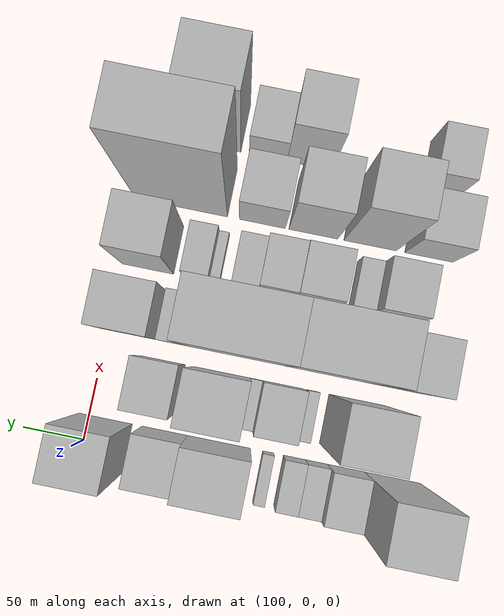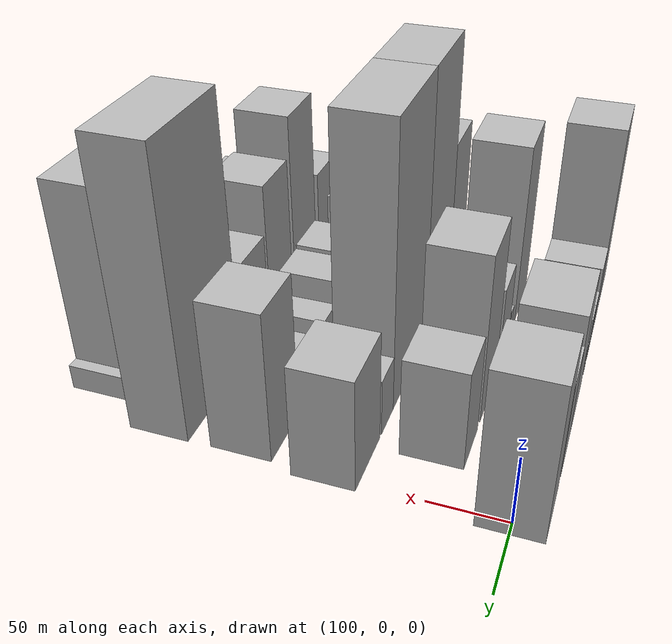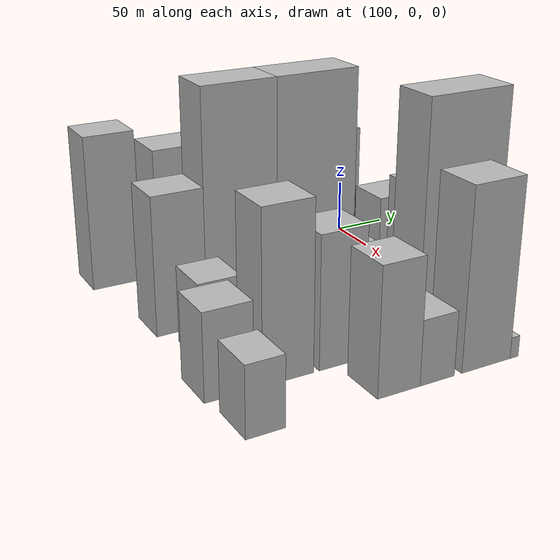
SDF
<sdf version="1.6">
 <world name="default">
  <model name="building_17">
   <static>1</static>
   <pose>100.0000 -247.5709 0 0.000000 0.000000 0.000000</pose>
   <link name="link">
    <pose>0 0 70.50 0 0 0</pose>
    <collision name="collision"><geometry><box><size>40.0000 45.3294 141.0000</size></box></geometry></collision>
    <visual name="visual">
     <cast_shadows>0</cast_shadows>
     <geometry><box><size>40.0000 45.3294 141.0000</size></box></geometry>
     <material>
      <script>
       <uri>model://HANNAS_wall/materials/scripts</uri>
       <uri>model://HANNAS_wall/materials/textures</uri>
       <name>vrc/HANNAS_wall</name>
      </script>
     </material>
    </visual>
   </link>
  </model>
  <model name="building_18">
   <static>1</static>
   <pose>100.0000 -209.9071 0 0.000000 0.000000 0.000000</pose>
   <link name="link">
    <pose>0 0 25.50 0 0 0</pose>
    <collision name="collision"><geometry><box><size>40.0000 29.9982 51.0000</size></box></geometry></collision>
    <visual name="visual">
     <cast_shadows>0</cast_shadows>
     <geometry><box><size>40.0000 29.9982 51.0000</size></box></geometry>
     <material>
      <script>
       <uri>model://HANNAS_wall/materials/scripts</uri>
       <uri>model://HANNAS_wall/materials/textures</uri>
       <name>vrc/HANNAS_wall</name>
      </script>
     </material>
    </visual>
   </link>
  </model>
  <model name="building_19">
   <static>1</static>
   <pose>100.0000 -185.9173 0 0.000000 0.000000 0.000000</pose>
   <link name="link">
    <pose>0 0 16.50 0 0 0</pose>
    <collision name="collision"><geometry><box><size>40.0000 17.9815 33.0000</size></box></geometry></collision>
    <visual name="visual">
     <cast_shadows>0</cast_shadows>
     <geometry><box><size>40.0000 17.9815 33.0000</size></box></geometry>
     <material>
      <script>
       <uri>model://HANNAS_wall/materials/scripts</uri>
       <uri>model://HANNAS_wall/materials/textures</uri>
       <name>vrc/HANNAS_wall</name>
      </script>
     </material>
    </visual>
   </link>
  </model>
  <model name="building_20">
   <static>1</static>
   <pose>100.0000 -167.9910 0 0.000000 0.000000 0.000000</pose>
   <link name="link">
    <pose>0 0 16.50 0 0 0</pose>
    <collision name="collision"><geometry><box><size>40.0000 17.8710 33.0000</size></box></geometry></collision>
    <visual name="visual">
     <cast_shadows>0</cast_shadows>
     <geometry><box><size>40.0000 17.8710 33.0000</size></box></geometry>
     <material>
      <script>
       <uri>model://HANNAS_wall/materials/scripts</uri>
       <uri>model://HANNAS_wall/materials/textures</uri>
       <name>vrc/HANNAS_wall</name>
      </script>
     </material>
    </visual>
   </link>
  </model>
  <model name="building_21">
   <static>1</static>
   <pose>100.0000 -146.5413 0 0.000000 0.000000 0.000000</pose>
   <link name="link">
    <pose>0 0 10.50 0 0 0</pose>
    <collision name="collision"><geometry><box><size>40.0000 9.0284 21.0000</size></box></geometry></collision>
    <visual name="visual">
     <cast_shadows>0</cast_shadows>
     <geometry><box><size>40.0000 9.0284 21.0000</size></box></geometry>
     <material>
      <script>
       <uri>model://HANNAS_wall/materials/scripts</uri>
       <uri>model://HANNAS_wall/materials/textures</uri>
       <name>vrc/HANNAS_wall</name>
      </script>
     </material>
    </visual>
   </link>
  </model>
  <model name="building_22">
   <static>1</static>
   <pose>100.0000 -106.4332 0 0.000000 0.000000 0.000000</pose>
   <link name="link">
    <pose>0 0 45.00 0 0 0</pose>
    <collision name="collision"><geometry><box><size>40.0000 51.1879 90.0000</size></box></geometry></collision>
    <visual name="visual">
     <cast_shadows>0</cast_shadows>
     <geometry><box><size>40.0000 51.1879 90.0000</size></box></geometry>
     <material>
      <script>
       <uri>model://HANNAS_wall/materials/scripts</uri>
       <uri>model://HANNAS_wall/materials/textures</uri>
       <name>vrc/HANNAS_wall</name>
      </script>
     </material>
    </visual>
   </link>
  </model>
  <model name="building_23">
   <static>1</static>
   <pose>100.0000 -62.1196 0 0.000000 0.000000 0.000000</pose>
   <link name="link">
    <pose>0 0 34.50 0 0 0</pose>
    <collision name="collision"><geometry><box><size>40.0000 37.4392 69.0000</size></box></geometry></collision>
    <visual name="visual">
     <cast_shadows>0</cast_shadows>
     <geometry><box><size>40.0000 37.4392 69.0000</size></box></geometry>
     <material>
      <script>
       <uri>model://HANNAS_wall/materials/scripts</uri>
       <uri>model://HANNAS_wall/materials/textures</uri>
       <name>vrc/HANNAS_wall</name>
      </script>
     </material>
    </visual>
   </link>
  </model>
  <model name="building_24">
   <static>1</static>
   <pose>100.0000 -13.4017 0 0.000000 0.000000 0.000000</pose>
   <link name="link">
    <pose>0 0 55.50 0 0 0</pose>
    <collision name="collision"><geometry><box><size>40.0000 43.9966 111.0000</size></box></geometry></collision>
    <visual name="visual">
     <cast_shadows>0</cast_shadows>
     <geometry><box><size>40.0000 43.9966 111.0000</size></box></geometry>
     <material>
      <script>
       <uri>model://HANNAS_wall/materials/scripts</uri>
       <uri>model://HANNAS_wall/materials/textures</uri>
       <name>vrc/HANNAS_wall</name>
      </script>
     </material>
    </visual>
   </link>
  </model>
  <model name="building_73">
   <static>1</static>
   <pose>155.0000 -207.7042 0 0.000000 0.000000 0.000000</pose>
   <link name="link">
    <pose>0 0 69.00 0 0 0</pose>
    <collision name="collision"><geometry><box><size>40.0000 44.4602 138.0000</size></box></geometry></collision>
    <visual name="visual">
     <cast_shadows>0</cast_shadows>
     <geometry><box><size>40.0000 44.4602 138.0000</size></box></geometry>
     <material>
      <script>
       <uri>model://HANNAS_wall/materials/scripts</uri>
       <uri>model://HANNAS_wall/materials/textures</uri>
       <name>vrc/HANNAS_wall</name>
      </script>
     </material>
    </visual>
   </link>
  </model>
  <model name="building_74">
   <static>1</static>
   <pose>155.0000 -171.7749 0 0.000000 0.000000 0.000000</pose>
   <link name="link">
    <pose>0 0 10.50 0 0 0</pose>
    <collision name="collision"><geometry><box><size>40.0000 9.3984 21.0000</size></box></geometry></collision>
    <visual name="visual">
     <cast_shadows>0</cast_shadows>
     <geometry><box><size>40.0000 9.3984 21.0000</size></box></geometry>
     <material>
      <script>
       <uri>model://HANNAS_wall/materials/scripts</uri>
       <uri>model://HANNAS_wall/materials/textures</uri>
       <name>vrc/HANNAS_wall</name>
      </script>
     </material>
    </visual>
   </link>
  </model>
  <model name="building_75">
   <static>1</static>
   <pose>155.0000 -147.3558 0 0.000000 0.000000 0.000000</pose>
   <link name="link">
    <pose>0 0 31.50 0 0 0</pose>
    <collision name="collision"><geometry><box><size>40.0000 33.4397 63.0000</size></box></geometry></collision>
    <visual name="visual">
     <cast_shadows>0</cast_shadows>
     <geometry><box><size>40.0000 33.4397 63.0000</size></box></geometry>
     <material>
      <script>
       <uri>model://HANNAS_wall/materials/scripts</uri>
       <uri>model://HANNAS_wall/materials/textures</uri>
       <name>vrc/HANNAS_wall</name>
      </script>
     </material>
    </visual>
   </link>
  </model>
  <model name="building_76">
   <static>1</static>
   <pose>155.0000 -125.5573 0 0.000000 0.000000 0.000000</pose>
   <link name="link">
    <pose>0 0 10.50 0 0 0</pose>
    <collision name="collision"><geometry><box><size>40.0000 10.1575 21.0000</size></box></geometry></collision>
    <visual name="visual">
     <cast_shadows>0</cast_shadows>
     <geometry><box><size>40.0000 10.1575 21.0000</size></box></geometry>
     <material>
      <script>
       <uri>model://HANNAS_wall/materials/scripts</uri>
       <uri>model://HANNAS_wall/materials/textures</uri>
       <name>vrc/HANNAS_wall</name>
      </script>
     </material>
    </visual>
   </link>
  </model>
  <model name="building_77">
   <static>1</static>
   <pose>155.0000 -97.4582 0 0.000000 0.000000 0.000000</pose>
   <link name="link">
    <pose>0 0 61.50 0 0 0</pose>
    <collision name="collision"><geometry><box><size>40.0000 46.0406 123.0000</size></box></geometry></collision>
    <visual name="visual">
     <cast_shadows>0</cast_shadows>
     <geometry><box><size>40.0000 46.0406 123.0000</size></box></geometry>
     <material>
      <script>
       <uri>model://HANNAS_wall/materials/scripts</uri>
       <uri>model://HANNAS_wall/materials/textures</uri>
       <name>vrc/HANNAS_wall</name>
      </script>
     </material>
    </visual>
   </link>
  </model>
  <model name="building_78">
   <static>1</static>
   <pose>155.0000 -49.2746 0 0.000000 0.000000 0.000000</pose>
   <link name="link">
    <pose>0 0 36.00 0 0 0</pose>
    <collision name="collision"><geometry><box><size>40.0000 36.3266 72.0000</size></box></geometry></collision>
    <visual name="visual">
     <cast_shadows>0</cast_shadows>
     <geometry><box><size>40.0000 36.3266 72.0000</size></box></geometry>
     <material>
      <script>
       <uri>model://HANNAS_wall/materials/scripts</uri>
       <uri>model://HANNAS_wall/materials/textures</uri>
       <name>vrc/HANNAS_wall</name>
      </script>
     </material>
    </visual>
   </link>
  </model>
  <model name="building_120">
   <static>1</static>
   <pose>210.0000 -232.6788 0 0.000000 0.000000 0.000000</pose>
   <link name="link">
    <pose>0 0 60.00 0 0 0</pose>
    <collision name="collision"><geometry><box><size>40.0000 44.4890 120.0000</size></box></geometry></collision>
    <visual name="visual">
     <cast_shadows>0</cast_shadows>
     <geometry><box><size>40.0000 44.4890 120.0000</size></box></geometry>
     <material>
      <script>
       <uri>model://HANNAS_wall/materials/scripts</uri>
       <uri>model://HANNAS_wall/materials/textures</uri>
       <name>vrc/HANNAS_wall</name>
      </script>
     </material>
    </visual>
   </link>
  </model>
  <model name="building_121">
   <static>1</static>
   <pose>210.0000 -177.3393 0 0.000000 0.000000 0.000000</pose>
   <link name="link">
    <pose>0 0 100.50 0 0 0</pose>
    <collision name="collision"><geometry><box><size>40.0000 66.1899 201.0000</size></box></geometry></collision>
    <visual name="visual">
     <cast_shadows>0</cast_shadows>
     <geometry><box><size>40.0000 66.1899 201.0000</size></box></geometry>
     <material>
      <script>
       <uri>model://HANNAS_wall/materials/scripts</uri>
       <uri>model://HANNAS_wall/materials/textures</uri>
       <name>vrc/HANNAS_wall</name>
      </script>
     </material>
    </visual>
   </link>
  </model>
  <model name="building_122">
   <static>1</static>
   <pose>210.0000 -106.1321 0 0.000000 0.000000 0.000000</pose>
   <link name="link">
    <pose>0 0 100.50 0 0 0</pose>
    <collision name="collision"><geometry><box><size>40.0000 76.2245 201.0000</size></box></geometry></collision>
    <visual name="visual">
     <cast_shadows>0</cast_shadows>
     <geometry><box><size>40.0000 76.2245 201.0000</size></box></geometry>
     <material>
      <script>
       <uri>model://HANNAS_wall/materials/scripts</uri>
       <uri>model://HANNAS_wall/materials/textures</uri>
       <name>vrc/HANNAS_wall</name>
      </script>
     </material>
    </visual>
   </link>
  </model>
  <model name="building_123">
   <static>1</static>
   <pose>210.0000 -55.7911 0 0.000000 0.000000 0.000000</pose>
   <link name="link">
    <pose>0 0 21.00 0 0 0</pose>
    <collision name="collision"><geometry><box><size>40.0000 24.4575 42.0000</size></box></geometry></collision>
    <visual name="visual">
     <cast_shadows>0</cast_shadows>
     <geometry><box><size>40.0000 24.4575 42.0000</size></box></geometry>
     <material>
      <script>
       <uri>model://HANNAS_wall/materials/scripts</uri>
       <uri>model://HANNAS_wall/materials/textures</uri>
       <name>vrc/HANNAS_wall</name>
      </script>
     </material>
    </visual>
   </link>
  </model>
  <model name="building_124">
   <static>1</static>
   <pose>210.0000 -17.4130 0 0.000000 0.000000 0.000000</pose>
   <link name="link">
    <pose>0 0 40.50 0 0 0</pose>
    <collision name="collision"><geometry><box><size>40.0000 46.2987 81.0000</size></box></geometry></collision>
    <visual name="visual">
     <cast_shadows>0</cast_shadows>
     <geometry><box><size>40.0000 46.2987 81.0000</size></box></geometry>
     <material>
      <script>
       <uri>model://HANNAS_wall/materials/scripts</uri>
       <uri>model://HANNAS_wall/materials/textures</uri>
       <name>vrc/HANNAS_wall</name>
      </script>
     </material>
    </visual>
   </link>
  </model>
  <model name="building_167">
   <static>1</static>
   <pose>265.0000 -224.0963 0 0.000000 0.000000 0.000000</pose>
   <link name="link">
    <pose>0 0 33.00 0 0 0</pose>
    <collision name="collision"><geometry><box><size>40.0000 36.3604 66.0000</size></box></geometry></collision>
    <visual name="visual">
     <cast_shadows>0</cast_shadows>
     <geometry><box><size>40.0000 36.3604 66.0000</size></box></geometry>
     <material>
      <script>
       <uri>model://HANNAS_wall/materials/scripts</uri>
       <uri>model://HANNAS_wall/materials/textures</uri>
       <name>vrc/HANNAS_wall</name>
      </script>
     </material>
    </visual>
   </link>
  </model>
  <model name="building_168">
   <static>1</static>
   <pose>265.0000 -196.7572 0 0.000000 0.000000 0.000000</pose>
   <link name="link">
    <pose>0 0 16.50 0 0 0</pose>
    <collision name="collision"><geometry><box><size>40.0000 18.3178 33.0000</size></box></geometry></collision>
    <visual name="visual">
     <cast_shadows>0</cast_shadows>
     <geometry><box><size>40.0000 18.3178 33.0000</size></box></geometry>
     <material>
      <script>
       <uri>model://HANNAS_wall/materials/scripts</uri>
       <uri>model://HANNAS_wall/materials/textures</uri>
       <name>vrc/HANNAS_wall</name>
      </script>
     </material>
    </visual>
   </link>
  </model>
  <model name="building_169">
   <static>1</static>
   <pose>265.0000 -161.6780 0 0.000000 0.000000 0.000000</pose>
   <link name="link">
    <pose>0 0 30.00 0 0 0</pose>
    <collision name="collision"><geometry><box><size>40.0000 35.8407 60.0000</size></box></geometry></collision>
    <visual name="visual">
     <cast_shadows>0</cast_shadows>
     <geometry><box><size>40.0000 35.8407 60.0000</size></box></geometry>
     <material>
      <script>
       <uri>model://HANNAS_wall/materials/scripts</uri>
       <uri>model://HANNAS_wall/materials/textures</uri>
       <name>vrc/HANNAS_wall</name>
      </script>
     </material>
    </visual>
   </link>
  </model>
  <model name="building_170">
   <static>1</static>
   <pose>265.0000 -128.5585 0 0.000000 0.000000 0.000000</pose>
   <link name="link">
    <pose>0 0 28.50 0 0 0</pose>
    <collision name="collision"><geometry><box><size>40.0000 30.3983 57.0000</size></box></geometry></collision>
    <visual name="visual">
     <cast_shadows>0</cast_shadows>
     <geometry><box><size>40.0000 30.3983 57.0000</size></box></geometry>
     <material>
      <script>
       <uri>model://HANNAS_wall/materials/scripts</uri>
       <uri>model://HANNAS_wall/materials/textures</uri>
       <name>vrc/HANNAS_wall</name>
      </script>
     </material>
    </visual>
   </link>
  </model>
  <model name="building_171">
   <static>1</static>
   <pose>265.0000 -102.3649 0 0.000000 0.000000 0.000000</pose>
   <link name="link">
    <pose>0 0 19.50 0 0 0</pose>
    <collision name="collision"><geometry><box><size>40.0000 21.9888 39.0000</size></box></geometry></collision>
    <visual name="visual">
     <cast_shadows>0</cast_shadows>
     <geometry><box><size>40.0000 21.9888 39.0000</size></box></geometry>
     <material>
      <script>
       <uri>model://HANNAS_wall/materials/scripts</uri>
       <uri>model://HANNAS_wall/materials/textures</uri>
       <name>vrc/HANNAS_wall</name>
      </script>
     </material>
    </visual>
   </link>
  </model>
  <model name="building_172">
   <static>1</static>
   <pose>265.0000 -77.3118 0 0.000000 0.000000 0.000000</pose>
   <link name="link">
    <pose>0 0 9.00 0 0 0</pose>
    <collision name="collision"><geometry><box><size>40.0000 8.1174 18.0000</size></box></geometry></collision>
    <visual name="visual">
     <cast_shadows>0</cast_shadows>
     <geometry><box><size>40.0000 8.1174 18.0000</size></box></geometry>
     <material>
      <script>
       <uri>model://HANNAS_wall/materials/scripts</uri>
       <uri>model://HANNAS_wall/materials/textures</uri>
       <name>vrc/HANNAS_wall</name>
      </script>
     </material>
    </visual>
   </link>
  </model>
  <model name="building_173">
   <static>1</static>
   <pose>265.0000 -62.1522 0 0.000000 0.000000 0.000000</pose>
   <link name="link">
    <pose>0 0 21.00 0 0 0</pose>
    <collision name="collision"><geometry><box><size>40.0000 22.2018 42.0000</size></box></geometry></collision>
    <visual name="visual">
     <cast_shadows>0</cast_shadows>
     <geometry><box><size>40.0000 22.2018 42.0000</size></box></geometry>
     <material>
      <script>
       <uri>model://HANNAS_wall/materials/scripts</uri>
       <uri>model://HANNAS_wall/materials/textures</uri>
       <name>vrc/HANNAS_wall</name>
      </script>
     </material>
    </visual>
   </link>
  </model>
  <model name="building_174">
   <static>1</static>
   <pose>265.0000 -21.7586 0 0.000000 0.000000 0.000000</pose>
   <link name="link">
    <pose>0 0 54.00 0 0 0</pose>
    <collision name="collision"><geometry><box><size>40.0000 42.5854 108.0000</size></box></geometry></collision>
    <visual name="visual">
     <cast_shadows>0</cast_shadows>
     <geometry><box><size>40.0000 42.5854 108.0000</size></box></geometry>
     <material>
      <script>
       <uri>model://HANNAS_wall/materials/scripts</uri>
       <uri>model://HANNAS_wall/materials/textures</uri>
       <name>vrc/HANNAS_wall</name>
      </script>
     </material>
    </visual>
   </link>
  </model>
  <model name="building_216">
   <static>1</static>
   <pose>320.0000 -243.9485 0 0.000000 0.000000 0.000000</pose>
   <link name="link">
    <pose>0 0 36.00 0 0 0</pose>
    <collision name="collision"><geometry><box><size>40.0000 39.9082 72.0000</size></box></geometry></collision>
    <visual name="visual">
     <cast_shadows>0</cast_shadows>
     <geometry><box><size>40.0000 39.9082 72.0000</size></box></geometry>
     <material>
      <script>
       <uri>model://HANNAS_wall/materials/scripts</uri>
       <uri>model://HANNAS_wall/materials/textures</uri>
       <name>vrc/HANNAS_wall</name>
      </script>
     </material>
    </visual>
   </link>
  </model>
  <model name="building_217">
   <static>1</static>
   <pose>320.0000 -195.1925 0 0.000000 0.000000 0.000000</pose>
   <link name="link">
    <pose>0 0 70.50 0 0 0</pose>
    <collision name="collision"><geometry><box><size>40.0000 43.6037 141.0000</size></box></geometry></collision>
    <visual name="visual">
     <cast_shadows>0</cast_shadows>
     <geometry><box><size>40.0000 43.6037 141.0000</size></box></geometry>
     <material>
      <script>
       <uri>model://HANNAS_wall/materials/scripts</uri>
       <uri>model://HANNAS_wall/materials/textures</uri>
       <name>vrc/HANNAS_wall</name>
      </script>
     </material>
    </visual>
   </link>
  </model>
  <model name="building_218">
   <static>1</static>
   <pose>320.0000 -147.9862 0 0.000000 0.000000 0.000000</pose>
   <link name="link">
    <pose>0 0 55.50 0 0 0</pose>
    <collision name="collision"><geometry><box><size>40.0000 40.8087 111.0000</size></box></geometry></collision>
    <visual name="visual">
     <cast_shadows>0</cast_shadows>
     <geometry><box><size>40.0000 40.8087 111.0000</size></box></geometry>
     <material>
      <script>
       <uri>model://HANNAS_wall/materials/scripts</uri>
       <uri>model://HANNAS_wall/materials/textures</uri>
       <name>vrc/HANNAS_wall</name>
      </script>
     </material>
    </visual>
   </link>
  </model>
  <model name="building_219">
   <static>1</static>
   <pose>320.0000 -105.5208 0 0.000000 0.000000 0.000000</pose>
   <link name="link">
    <pose>0 0 37.50 0 0 0</pose>
    <collision name="collision"><geometry><box><size>40.0000 38.1222 75.0000</size></box></geometry></collision>
    <visual name="visual">
     <cast_shadows>0</cast_shadows>
     <geometry><box><size>40.0000 38.1222 75.0000</size></box></geometry>
     <material>
      <script>
       <uri>model://HANNAS_wall/materials/scripts</uri>
       <uri>model://HANNAS_wall/materials/textures</uri>
       <name>vrc/HANNAS_wall</name>
      </script>
     </material>
    </visual>
   </link>
  </model>
  <model name="building_220">
   <static>1</static>
   <pose>320.0000 -38.1067 0 0.000000 0.000000 0.000000</pose>
   <link name="link">
    <pose>0 0 100.50 0 0 0</pose>
    <collision name="collision"><geometry><box><size>40.0000 76.7059 201.0000</size></box></geometry></collision>
    <visual name="visual">
     <cast_shadows>0</cast_shadows>
     <geometry><box><size>40.0000 76.7059 201.0000</size></box></geometry>
     <material>
      <script>
       <uri>model://HANNAS_wall/materials/scripts</uri>
       <uri>model://HANNAS_wall/materials/textures</uri>
       <name>vrc/HANNAS_wall</name>
      </script>
     </material>
    </visual>
   </link>
  </model>
  <model name="building_263">
   <static>1</static>
   <pose>375.0000 -243.5757 0 0.000000 0.000000 0.000000</pose>
   <link name="link">
    <pose>0 0 28.50 0 0 0</pose>
    <collision name="collision"><geometry><box><size>40.0000 30.9021 57.0000</size></box></geometry></collision>
    <visual name="visual">
     <cast_shadows>0</cast_shadows>
     <geometry><box><size>40.0000 30.9021 57.0000</size></box></geometry>
     <material>
      <script>
       <uri>model://HANNAS_wall/materials/scripts</uri>
       <uri>model://HANNAS_wall/materials/textures</uri>
       <name>vrc/HANNAS_wall</name>
      </script>
     </material>
    </visual>
   </link>
  </model>
  <model name="building_264">
   <static>1</static>
   <pose>375.0000 -133.9025 0 0.000000 0.000000 0.000000</pose>
   <link name="link">
    <pose>0 0 52.50 0 0 0</pose>
    <collision name="collision"><geometry><box><size>40.0000 37.4814 105.0000</size></box></geometry></collision>
    <visual name="visual">
     <cast_shadows>0</cast_shadows>
     <geometry><box><size>40.0000 37.4814 105.0000</size></box></geometry>
     <material>
      <script>
       <uri>model://HANNAS_wall/materials/scripts</uri>
       <uri>model://HANNAS_wall/materials/textures</uri>
       <name>vrc/HANNAS_wall</name>
      </script>
     </material>
    </visual>
   </link>
  </model>
  <model name="building_265">
   <static>1</static>
   <pose>375.0000 -99.3020 0 0.000000 0.000000 0.000000</pose>
   <link name="link">
    <pose>0 0 27.00 0 0 0</pose>
    <collision name="collision"><geometry><box><size>40.0000 31.7197 54.0000</size></box></geometry></collision>
    <visual name="visual">
     <cast_shadows>0</cast_shadows>
     <geometry><box><size>40.0000 31.7197 54.0000</size></box></geometry>
     <material>
      <script>
       <uri>model://HANNAS_wall/materials/scripts</uri>
       <uri>model://HANNAS_wall/materials/textures</uri>
       <name>vrc/HANNAS_wall</name>
      </script>
     </material>
    </visual>
   </link>
  </model>
  <model name="building_266">
   <static>1</static>
   <pose>375.0000 -52.8900 0 0.000000 0.000000 0.000000</pose>
   <link name="link">
    <pose>0 0 75.00 0 0 0</pose>
    <collision name="collision"><geometry><box><size>40.0000 47.1044 150.0000</size></box></geometry></collision>
    <visual name="visual">
     <cast_shadows>0</cast_shadows>
     <geometry><box><size>40.0000 47.1044 150.0000</size></box></geometry>
     <material>
      <script>
       <uri>model://HANNAS_wall/materials/scripts</uri>
       <uri>model://HANNAS_wall/materials/textures</uri>
       <name>vrc/HANNAS_wall</name>
      </script>
     </material>
    </visual>
   </link>
  </model>
  <model name="building_267">
   <static>1</static>
   <pose>375.0000 -25.2759 0 0.000000 0.000000 0.000000</pose>
   <link name="link">
    <pose>0 0 9.00 0 0 0</pose>
    <collision name="collision"><geometry><box><size>40.0000 8.1238 18.0000</size></box></geometry></collision>
    <visual name="visual">
     <cast_shadows>0</cast_shadows>
     <geometry><box><size>40.0000 8.1238 18.0000</size></box></geometry>
     <material>
      <script>
       <uri>model://HANNAS_wall/materials/scripts</uri>
       <uri>model://HANNAS_wall/materials/textures</uri>
       <name>vrc/HANNAS_wall</name>
      </script>
     </material>
    </visual>
   </link>
  </model>
 </world>
</sdf>
